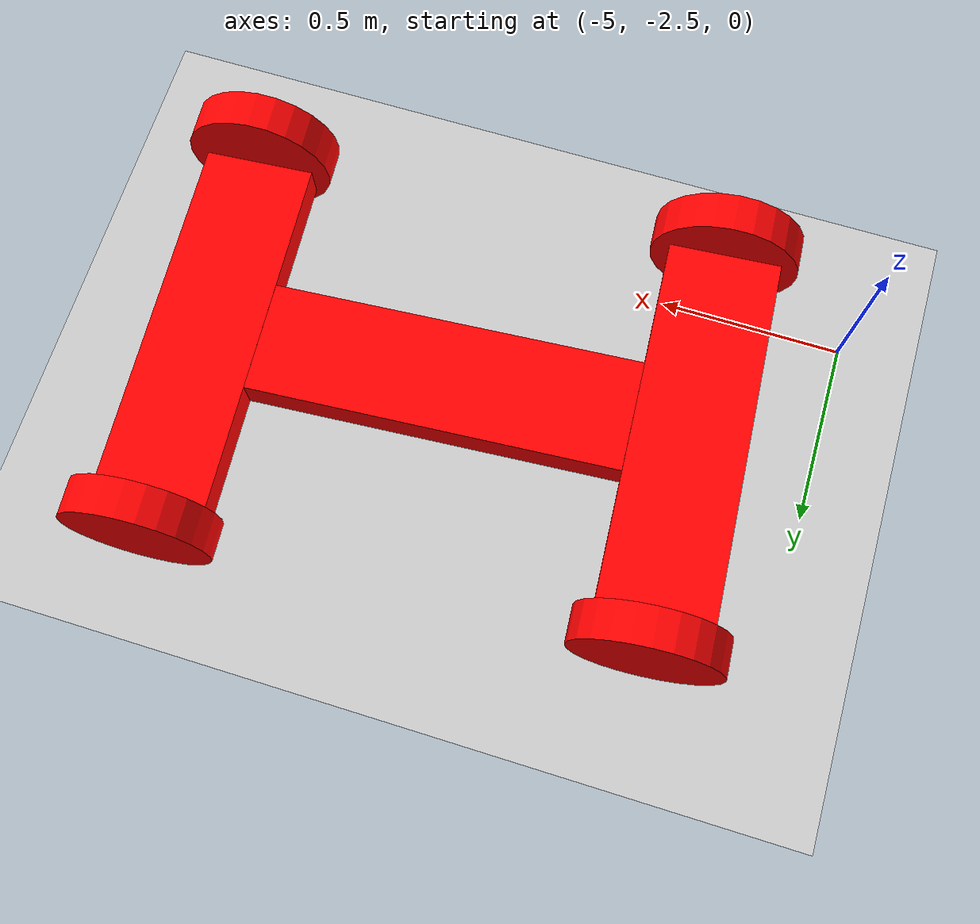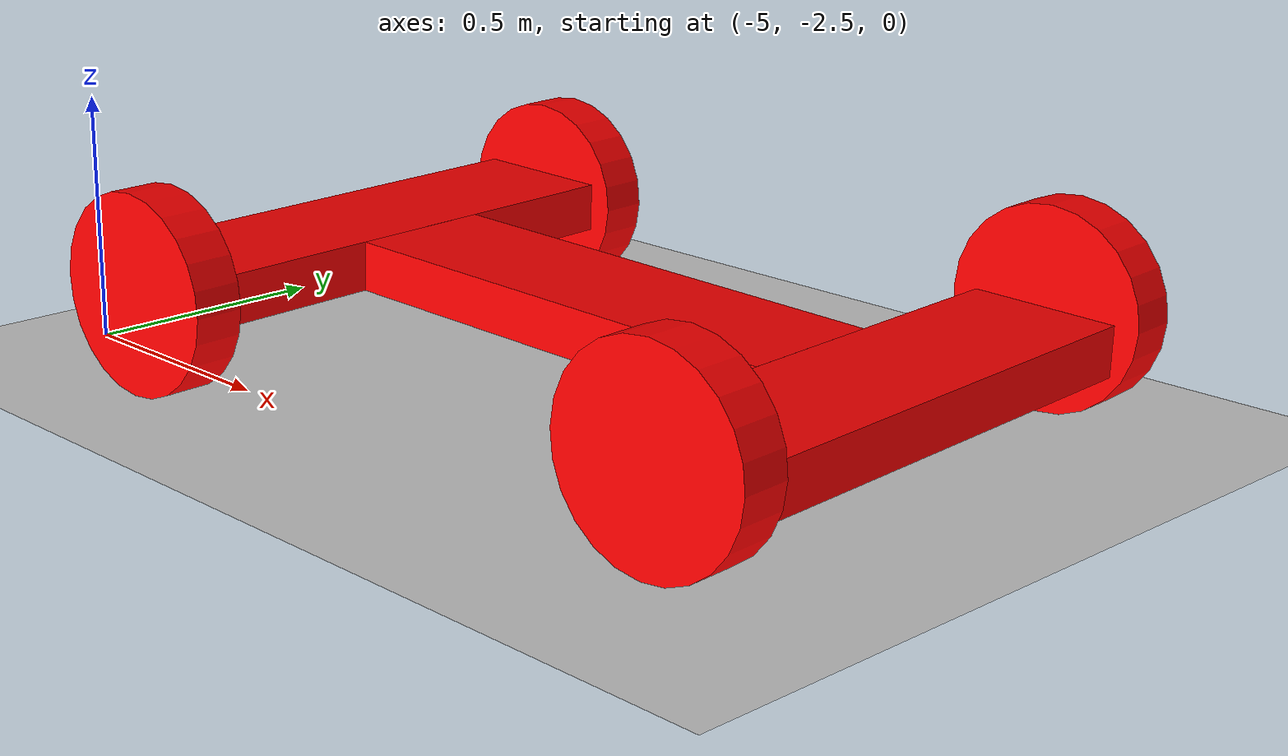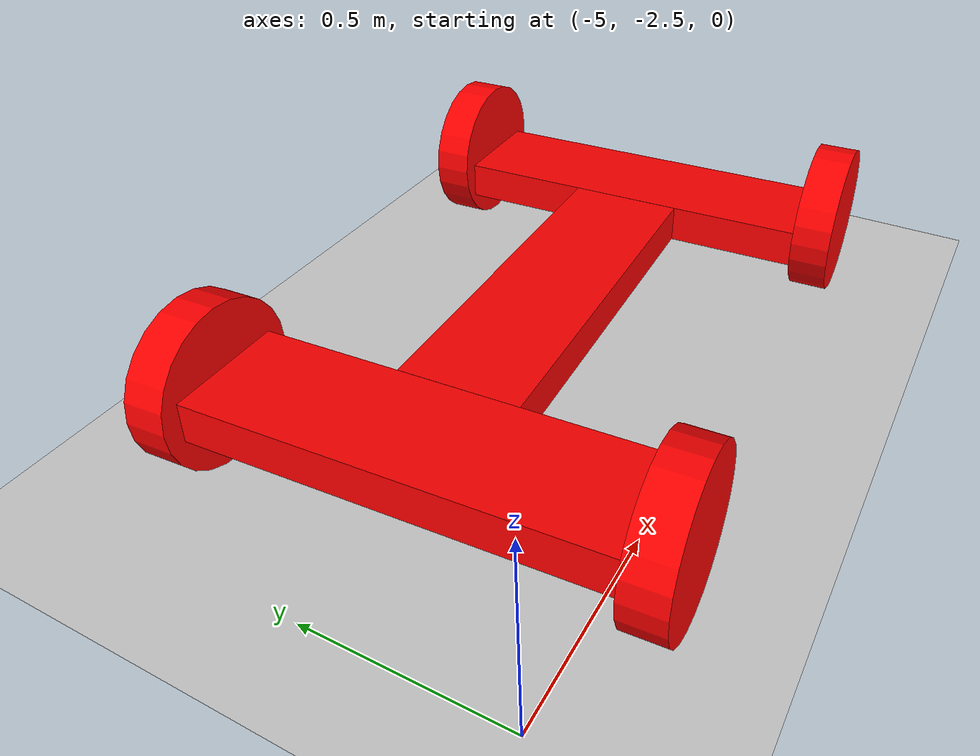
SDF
<sdf version="1.6">
 <world name="default">
  <model name="ground_plane">
   <static>1</static>
   <link name="link">
    <collision name="collision">
     <geometry><plane><normal>0 0 1</normal><size>100 100</size></plane></geometry>
     <surface><friction><ode><mu>100</mu><mu2>50</mu2></ode></friction></surface>
    </collision>
    <visual name="visual">
     <cast_shadows>0</cast_shadows>
     <geometry><plane><normal>0 0 1</normal><size>100 100</size></plane></geometry>
     <material>
      <script><uri>file://media/materials/scripts/gazebo.material</uri><name>Gazebo/Grey</name></script>
     </material>
    </visual>
   </link>
  </model>
  <model name="Robot">
   <link name="link_0">
    <pose>0.650121 -0 -0.012852 0 -0 0</pose>
    <inertial>
     <mass>1</mass>
     <inertia>
      <ixx>0.166667</ixx>
      <ixy>0</ixy>
      <ixz>0</ixz>
      <iyy>0.166667</iyy>
      <iyz>0</iyz>
      <izz>0.166667</izz>
     </inertia>
    </inertial>
    <visual name="visual">
     <geometry><box><size>0.3 1 0.1</size></box></geometry>
     <material>
      <lighting>1</lighting>
      <script><uri>file://media/materials/scripts/gazebo.material</uri><name>Gazebo/Grey</name></script>
      <shader type="pixel"><normal_map>__default__</normal_map></shader>
      <ambient>1 0 0 1</ambient>
      <diffuse>1 0 0 1</diffuse>
      <specular>0.01 0.01 0.01 1</specular>
      <emissive>0 0 0 1</emissive>
     </material>
    </visual>
    <collision name="collision">
     <geometry><box><size>0.3 1 0.1</size></box></geometry>
     <surface>
      <friction>
       <ode><mu>1</mu><mu2>1</mu2><fdir1>0 0 0</fdir1><slip1>0</slip1><slip2>0</slip2></ode>
       <torsional>
        <coefficient>1</coefficient>
        <patch_radius>0</patch_radius>
        <surface_radius>0</surface_radius>
        <use_patch_radius>1</use_patch_radius>
        <ode><slip>0</slip></ode>
       </torsional>
      </friction>
      <bounce><restitution_coefficient>0</restitution_coefficient><threshold>1e+06</threshold></bounce>
      <contact>
       <collide_without_contact>0</collide_without_contact>
       <collide_without_contact_bitmask>1</collide_without_contact_bitmask>
       <collide_bitmask>1</collide_bitmask>
       <ode>
        <soft_cfm>0</soft_cfm>
        <soft_erp>0.2</soft_erp>
        <kp>1e+13</kp>
        <kd>1</kd>
        <max_vel>0.01</max_vel>
        <min_depth>0</min_depth>
       </ode>
       <bullet>
        <split_impulse>1</split_impulse>
        <split_impulse_penetration_threshold>-0.01</split_impulse_penetration_threshold>
        <soft_cfm>0</soft_cfm>
        <soft_erp>0.2</soft_erp>
        <kp>1e+13</kp>
        <kd>1</kd>
       </bullet>
      </contact>
     </surface>
    </collision>
   </link>
   <link name="link_0_clone">
    <pose>2e-06 -0 -0.012852 0 -0 1.57</pose>
    <inertial>
     <mass>1</mass>
     <inertia>
      <ixx>0.166667</ixx>
      <ixy>0</ixy>
      <ixz>0</ixz>
      <iyy>0.166667</iyy>
      <iyz>0</iyz>
      <izz>0.166667</izz>
     </inertia>
    </inertial>
    <visual name="visual">
     <geometry><box><size>0.3 1 0.1</size></box></geometry>
     <material>
      <lighting>1</lighting>
      <script><uri>file://media/materials/scripts/gazebo.material</uri><name>Gazebo/Grey</name></script>
      <shader type="pixel"><normal_map>__default__</normal_map></shader>
      <ambient>1 0 0 1</ambient>
      <diffuse>1 0 0 1</diffuse>
      <specular>0.01 0.01 0.01 1</specular>
      <emissive>0 0 0 1</emissive>
     </material>
    </visual>
    <collision name="collision">
     <geometry><box><size>0.3 1 0.1</size></box></geometry>
     <surface>
      <friction>
       <ode><mu>1</mu><mu2>1</mu2><fdir1>0 0 0</fdir1><slip1>0</slip1><slip2>0</slip2></ode>
       <torsional>
        <coefficient>1</coefficient>
        <patch_radius>0</patch_radius>
        <surface_radius>0</surface_radius>
        <use_patch_radius>1</use_patch_radius>
        <ode><slip>0</slip></ode>
       </torsional>
      </friction>
      <bounce><restitution_coefficient>0</restitution_coefficient><threshold>1e+06</threshold></bounce>
      <contact>
       <collide_without_contact>0</collide_without_contact>
       <collide_without_contact_bitmask>1</collide_without_contact_bitmask>
       <collide_bitmask>1</collide_bitmask>
       <ode>
        <soft_cfm>0</soft_cfm>
        <soft_erp>0.2</soft_erp>
        <kp>1e+13</kp>
        <kd>1</kd>
        <max_vel>0.01</max_vel>
        <min_depth>0</min_depth>
       </ode>
       <bullet>
        <split_impulse>1</split_impulse>
        <split_impulse_penetration_threshold>-0.01</split_impulse_penetration_threshold>
        <soft_cfm>0</soft_cfm>
        <soft_erp>0.2</soft_erp>
        <kp>1e+13</kp>
        <kd>1</kd>
       </bullet>
      </contact>
     </surface>
    </collision>
   </link>
   <link name="link_0_clone_0">
    <pose>-0.650118 0 -0.012852 0 -0 0</pose>
    <inertial>
     <mass>1</mass>
     <inertia>
      <ixx>0.166667</ixx>
      <ixy>0</ixy>
      <ixz>0</ixz>
      <iyy>0.166667</iyy>
      <iyz>0</iyz>
      <izz>0.166667</izz>
     </inertia>
    </inertial>
    <visual name="visual">
     <geometry><box><size>0.3 1 0.1</size></box></geometry>
     <material>
      <lighting>1</lighting>
      <script><uri>file://media/materials/scripts/gazebo.material</uri><name>Gazebo/Grey</name></script>
      <shader type="pixel"><normal_map>__default__</normal_map></shader>
      <ambient>1 0 0 1</ambient>
      <diffuse>1 0 0 1</diffuse>
      <specular>0.01 0.01 0.01 1</specular>
      <emissive>0 0 0 1</emissive>
     </material>
    </visual>
    <collision name="collision">
     <geometry><box><size>0.3 1 0.1</size></box></geometry>
     <surface>
      <friction>
       <ode><mu>1</mu><mu2>1</mu2><fdir1>0 0 0</fdir1><slip1>0</slip1><slip2>0</slip2></ode>
       <torsional>
        <coefficient>1</coefficient>
        <patch_radius>0</patch_radius>
        <surface_radius>0</surface_radius>
        <use_patch_radius>1</use_patch_radius>
        <ode><slip>0</slip></ode>
       </torsional>
      </friction>
      <bounce><restitution_coefficient>0</restitution_coefficient><threshold>1e+06</threshold></bounce>
      <contact>
       <collide_without_contact>0</collide_without_contact>
       <collide_without_contact_bitmask>1</collide_without_contact_bitmask>
       <collide_bitmask>1</collide_bitmask>
       <ode>
        <soft_cfm>0</soft_cfm>
        <soft_erp>0.2</soft_erp>
        <kp>1e+13</kp>
        <kd>1</kd>
        <max_vel>0.01</max_vel>
        <min_depth>0</min_depth>
       </ode>
       <bullet>
        <split_impulse>1</split_impulse>
        <split_impulse_penetration_threshold>-0.01</split_impulse_penetration_threshold>
        <soft_cfm>0</soft_cfm>
        <soft_erp>0.2</soft_erp>
        <kp>1e+13</kp>
        <kd>1</kd>
       </bullet>
      </contact>
     </surface>
    </collision>
   </link>
   <link name="link_2">
    <pose>0.650121 -0.550159 0.032112 1.57 -0 0</pose>
    <inertial>
     <mass>1</mass>
     <inertia><ixx>0.145833</ixx><ixy>0</ixy><ixz>0</ixz><iyy>0.145833</iyy><iyz>0</iyz><izz>0.125</izz></inertia>
    </inertial>
    <visual name="visual">
     <geometry><cylinder><radius>0.2</radius><length>0.1</length></cylinder></geometry>
     <material>
      <lighting>1</lighting>
      <script><uri>file://media/materials/scripts/gazebo.material</uri><name>Gazebo/Grey</name></script>
      <shader type="pixel"><normal_map>__default__</normal_map></shader>
      <ambient>1 0 0 1</ambient>
      <diffuse>1 0 0 1</diffuse>
      <specular>0.01 0.01 0.01 1</specular>
      <emissive>0 0 0 1</emissive>
     </material>
    </visual>
    <collision name="collision">
     <geometry><cylinder><radius>0.2</radius><length>0.1</length></cylinder></geometry>
     <surface>
      <friction>
       <ode><mu>1</mu><mu2>1</mu2><fdir1>0 0 0</fdir1><slip1>0</slip1><slip2>0</slip2></ode>
       <torsional>
        <coefficient>1</coefficient>
        <patch_radius>0</patch_radius>
        <surface_radius>0</surface_radius>
        <use_patch_radius>1</use_patch_radius>
        <ode><slip>0</slip></ode>
       </torsional>
      </friction>
      <bounce><restitution_coefficient>0</restitution_coefficient><threshold>1e+06</threshold></bounce>
      <contact>
       <collide_without_contact>0</collide_without_contact>
       <collide_without_contact_bitmask>1</collide_without_contact_bitmask>
       <collide_bitmask>1</collide_bitmask>
       <ode>
        <soft_cfm>0</soft_cfm>
        <soft_erp>0.2</soft_erp>
        <kp>1e+13</kp>
        <kd>1</kd>
        <max_vel>0.01</max_vel>
        <min_depth>0</min_depth>
       </ode>
       <bullet>
        <split_impulse>1</split_impulse>
        <split_impulse_penetration_threshold>-0.01</split_impulse_penetration_threshold>
        <soft_cfm>0</soft_cfm>
        <soft_erp>0.2</soft_erp>
        <kp>1e+13</kp>
        <kd>1</kd>
       </bullet>
      </contact>
     </surface>
    </collision>
   </link>
   <link name="link_2_clone">
    <pose>0.650121 0.550159 0.032148 1.57 -0 0</pose>
    <inertial>
     <mass>1</mass>
     <inertia><ixx>0.145833</ixx><ixy>0</ixy><ixz>0</ixz><iyy>0.145833</iyy><iyz>0</iyz><izz>0.125</izz></inertia>
    </inertial>
    <visual name="visual">
     <geometry><cylinder><radius>0.2</radius><length>0.1</length></cylinder></geometry>
     <material>
      <lighting>1</lighting>
      <script><uri>file://media/materials/scripts/gazebo.material</uri><name>Gazebo/Grey</name></script>
      <shader type="pixel"><normal_map>__default__</normal_map></shader>
      <ambient>1 0 0 1</ambient>
      <diffuse>1 0 0 1</diffuse>
      <specular>0.01 0.01 0.01 1</specular>
      <emissive>0 0 0 1</emissive>
     </material>
    </visual>
    <collision name="collision">
     <geometry><cylinder><radius>0.2</radius><length>0.1</length></cylinder></geometry>
     <surface>
      <friction>
       <ode><mu>1</mu><mu2>1</mu2><fdir1>0 0 0</fdir1><slip1>0</slip1><slip2>0</slip2></ode>
       <torsional>
        <coefficient>1</coefficient>
        <patch_radius>0</patch_radius>
        <surface_radius>0</surface_radius>
        <use_patch_radius>1</use_patch_radius>
        <ode><slip>0</slip></ode>
       </torsional>
      </friction>
      <bounce><restitution_coefficient>0</restitution_coefficient><threshold>1e+06</threshold></bounce>
      <contact>
       <collide_without_contact>0</collide_without_contact>
       <collide_without_contact_bitmask>1</collide_without_contact_bitmask>
       <collide_bitmask>1</collide_bitmask>
       <ode>
        <soft_cfm>0</soft_cfm>
        <soft_erp>0.2</soft_erp>
        <kp>1e+13</kp>
        <kd>1</kd>
        <max_vel>0.01</max_vel>
        <min_depth>0</min_depth>
       </ode>
       <bullet>
        <split_impulse>1</split_impulse>
        <split_impulse_penetration_threshold>-0.01</split_impulse_penetration_threshold>
        <soft_cfm>0</soft_cfm>
        <soft_erp>0.2</soft_erp>
        <kp>1e+13</kp>
        <kd>1</kd>
       </bullet>
      </contact>
     </surface>
    </collision>
   </link>
   <link name="link_2_clone_0">
    <pose>-0.650118 -0.550159 -0.012852 1.57 -0 0</pose>
    <inertial>
     <mass>1</mass>
     <inertia><ixx>0.145833</ixx><ixy>0</ixy><ixz>0</ixz><iyy>0.145833</iyy><iyz>0</iyz><izz>0.125</izz></inertia>
    </inertial>
    <visual name="visual">
     <geometry><cylinder><radius>0.2</radius><length>0.1</length></cylinder></geometry>
     <material>
      <lighting>1</lighting>
      <script><uri>file://media/materials/scripts/gazebo.material</uri><name>Gazebo/Grey</name></script>
      <shader type="pixel"><normal_map>__default__</normal_map></shader>
      <ambient>1 0 0 1</ambient>
      <diffuse>1 0 0 1</diffuse>
      <specular>0.01 0.01 0.01 1</specular>
      <emissive>0 0 0 1</emissive>
     </material>
    </visual>
    <collision name="collision">
     <geometry><cylinder><radius>0.2</radius><length>0.1</length></cylinder></geometry>
     <surface>
      <friction>
       <ode><mu>1</mu><mu2>1</mu2><fdir1>0 0 0</fdir1><slip1>0</slip1><slip2>0</slip2></ode>
       <torsional>
        <coefficient>1</coefficient>
        <patch_radius>0</patch_radius>
        <surface_radius>0</surface_radius>
        <use_patch_radius>1</use_patch_radius>
        <ode><slip>0</slip></ode>
       </torsional>
      </friction>
      <bounce><restitution_coefficient>0</restitution_coefficient><threshold>1e+06</threshold></bounce>
      <contact>
       <collide_without_contact>0</collide_without_contact>
       <collide_without_contact_bitmask>1</collide_without_contact_bitmask>
       <collide_bitmask>1</collide_bitmask>
       <ode>
        <soft_cfm>0</soft_cfm>
        <soft_erp>0.2</soft_erp>
        <kp>1e+13</kp>
        <kd>1</kd>
        <max_vel>0.01</max_vel>
        <min_depth>0</min_depth>
       </ode>
       <bullet>
        <split_impulse>1</split_impulse>
        <split_impulse_penetration_threshold>-0.01</split_impulse_penetration_threshold>
        <soft_cfm>0</soft_cfm>
        <soft_erp>0.2</soft_erp>
        <kp>1e+13</kp>
        <kd>1</kd>
       </bullet>
      </contact>
     </surface>
    </collision>
   </link>
   <link name="link_2_clone_1">
    <pose>-0.650118 0.550159 -0.012852 1.57 -0 0</pose>
    <inertial>
     <mass>1</mass>
     <inertia><ixx>0.145833</ixx><ixy>0</ixy><ixz>0</ixz><iyy>0.145833</iyy><iyz>0</iyz><izz>0.125</izz></inertia>
    </inertial>
    <visual name="visual">
     <geometry><cylinder><radius>0.2</radius><length>0.1</length></cylinder></geometry>
     <material>
      <lighting>1</lighting>
      <script><uri>file://media/materials/scripts/gazebo.material</uri><name>Gazebo/Grey</name></script>
      <shader type="pixel"><normal_map>__default__</normal_map></shader>
      <ambient>1 0 0 1</ambient>
      <diffuse>1 0 0 1</diffuse>
      <specular>0.01 0.01 0.01 1</specular>
      <emissive>0 0 0 1</emissive>
     </material>
    </visual>
    <collision name="collision">
     <geometry><cylinder><radius>0.2</radius><length>0.1</length></cylinder></geometry>
     <surface>
      <friction>
       <ode><mu>1</mu><mu2>1</mu2><fdir1>0 0 0</fdir1><slip1>0</slip1><slip2>0</slip2></ode>
       <torsional>
        <coefficient>1</coefficient>
        <patch_radius>0</patch_radius>
        <surface_radius>0</surface_radius>
        <use_patch_radius>1</use_patch_radius>
        <ode><slip>0</slip></ode>
       </torsional>
      </friction>
      <bounce><restitution_coefficient>0</restitution_coefficient><threshold>1e+06</threshold></bounce>
      <contact>
       <collide_without_contact>0</collide_without_contact>
       <collide_without_contact_bitmask>1</collide_without_contact_bitmask>
       <collide_bitmask>1</collide_bitmask>
       <ode>
        <soft_cfm>0</soft_cfm>
        <soft_erp>0.2</soft_erp>
        <kp>1e+13</kp>
        <kd>1</kd>
        <max_vel>0.01</max_vel>
        <min_depth>0</min_depth>
       </ode>
       <bullet>
        <split_impulse>1</split_impulse>
        <split_impulse_penetration_threshold>-0.01</split_impulse_penetration_threshold>
        <soft_cfm>0</soft_cfm>
        <soft_erp>0.2</soft_erp>
        <kp>1e+13</kp>
        <kd>1</kd>
       </bullet>
      </contact>
     </surface>
    </collision>
   </link>
   <joint name="link_0_JOINT_2" type="revolute">
    <parent>link_0</parent>
    <child>link_2</child>
    <axis>
     <xyz>1 0 0</xyz>
     <use_parent_model_frame>0</use_parent_model_frame>
     <limit>
      <lower>-1.79769e+308</lower>
      <upper>1.79769e+308</upper>
      <effort>-1</effort>
      <velocity>-1</velocity>
     </limit>
     <dynamics>
      <spring_reference>0</spring_reference>
      <spring_stiffness>0</spring_stiffness>
      <damping>0</damping>
      <friction>0</friction>
     </dynamics>
    </axis>
    <physics>
     <ode><limit><cfm>0</cfm><erp>0.2</erp></limit><suspension><cfm>0</cfm><erp>0.2</erp></suspension></ode>
    </physics>
   </joint>
   <joint name="link_0_JOINT_3" type="revolute">
    <parent>link_0</parent>
    <child>link_2_clone</child>
    <axis>
     <xyz>1 0 0</xyz>
     <use_parent_model_frame>0</use_parent_model_frame>
     <limit>
      <lower>-1.79769e+308</lower>
      <upper>1.79769e+308</upper>
      <effort>-1</effort>
      <velocity>-1</velocity>
     </limit>
     <dynamics>
      <spring_reference>0</spring_reference>
      <spring_stiffness>0</spring_stiffness>
      <damping>0</damping>
      <friction>0</friction>
     </dynamics>
    </axis>
    <physics>
     <ode><limit><cfm>0</cfm><erp>0.2</erp></limit><suspension><cfm>0</cfm><erp>0.2</erp></suspension></ode>
    </physics>
   </joint>
   <joint name="link_0_clone_0_JOINT_4" type="revolute">
    <parent>link_0_clone_0</parent>
    <child>link_2_clone_0</child>
    <axis>
     <xyz>1 0 0</xyz>
     <use_parent_model_frame>0</use_parent_model_frame>
     <limit>
      <lower>-1.79769e+308</lower>
      <upper>1.79769e+308</upper>
      <effort>-1</effort>
      <velocity>-1</velocity>
     </limit>
     <dynamics>
      <spring_reference>0</spring_reference>
      <spring_stiffness>0</spring_stiffness>
      <damping>0</damping>
      <friction>0</friction>
     </dynamics>
    </axis>
    <physics>
     <ode><limit><cfm>0</cfm><erp>0.2</erp></limit><suspension><cfm>0</cfm><erp>0.2</erp></suspension></ode>
    </physics>
   </joint>
   <joint name="link_0_clone_0_JOINT_5" type="revolute">
    <parent>link_0_clone_0</parent>
    <child>link_2_clone_1</child>
    <axis>
     <xyz>1 0 0</xyz>
     <use_parent_model_frame>0</use_parent_model_frame>
     <limit>
      <lower>-1.79769e+308</lower>
      <upper>1.79769e+308</upper>
      <effort>-1</effort>
      <velocity>-1</velocity>
     </limit>
     <dynamics>
      <spring_reference>0</spring_reference>
      <spring_stiffness>0</spring_stiffness>
      <damping>0</damping>
      <friction>0</friction>
     </dynamics>
    </axis>
    <physics>
     <ode><limit><cfm>0</cfm><erp>0.2</erp></limit><suspension><cfm>0</cfm><erp>0.2</erp></suspension></ode>
    </physics>
   </joint>
   <joint name="link_0_clone_JOINT_0" type="revolute">
    <parent>link_0_clone</parent>
    <child>link_0</child>
    <axis>
     <xyz>1 0 0</xyz>
     <use_parent_model_frame>0</use_parent_model_frame>
     <limit>
      <lower>-1.79769e+308</lower>
      <upper>1.79769e+308</upper>
      <effort>-1</effort>
      <velocity>-1</velocity>
     </limit>
     <dynamics>
      <spring_reference>0</spring_reference>
      <spring_stiffness>0</spring_stiffness>
      <damping>0</damping>
      <friction>0</friction>
     </dynamics>
    </axis>
    <physics>
     <ode><limit><cfm>0</cfm><erp>0.2</erp></limit><suspension><cfm>0</cfm><erp>0.2</erp></suspension></ode>
    </physics>
   </joint>
   <joint name="link_0_clone_JOINT_1" type="revolute">
    <parent>link_0_clone</parent>
    <child>link_0_clone_0</child>
    <axis>
     <xyz>1 0 0</xyz>
     <use_parent_model_frame>0</use_parent_model_frame>
     <limit>
      <lower>-1.79769e+308</lower>
      <upper>1.79769e+308</upper>
      <effort>-1</effort>
      <velocity>-1</velocity>
     </limit>
     <dynamics>
      <spring_reference>0</spring_reference>
      <spring_stiffness>0</spring_stiffness>
      <damping>0</damping>
      <friction>0</friction>
     </dynamics>
    </axis>
    <physics>
     <ode><limit><cfm>0</cfm><erp>0.2</erp></limit><suspension><cfm>0</cfm><erp>0.2</erp></suspension></ode>
    </physics>
   </joint>
   <static>0</static>
   <pose>-4.00071 -2.03501 0.190365 -3.3e-05 0.034579 0.05837</pose>
  </model>
 </world>
</sdf>
